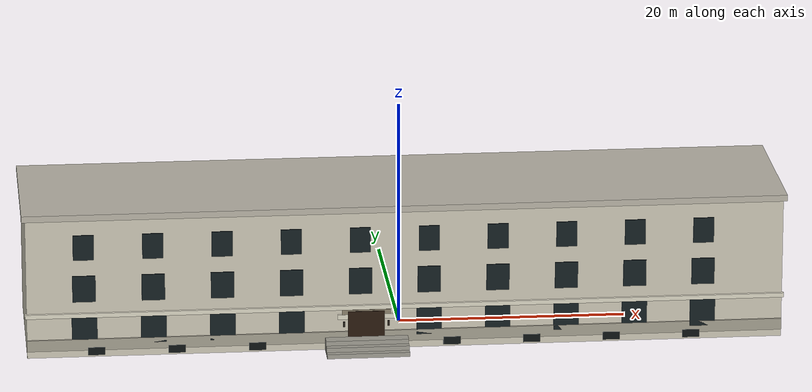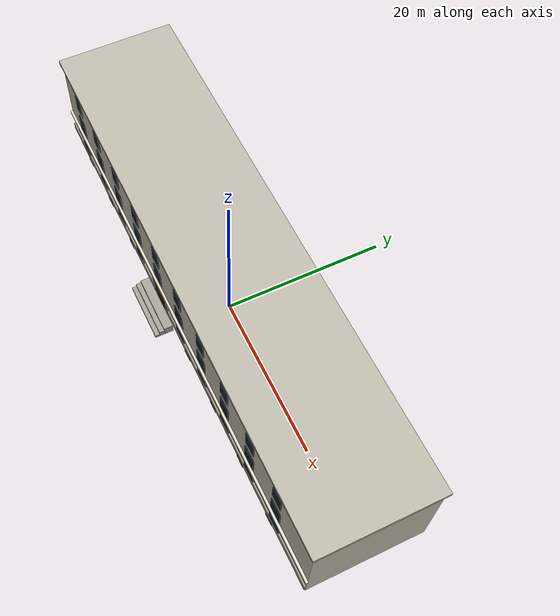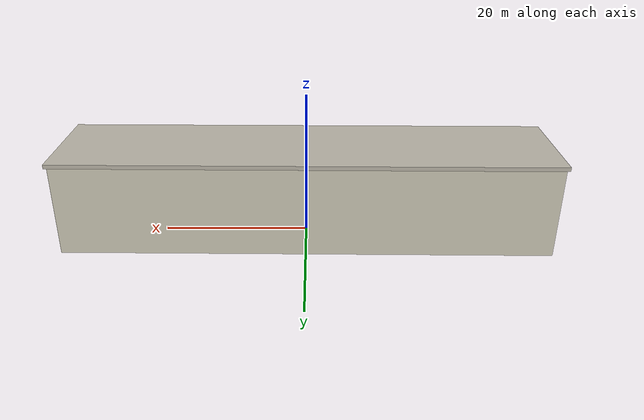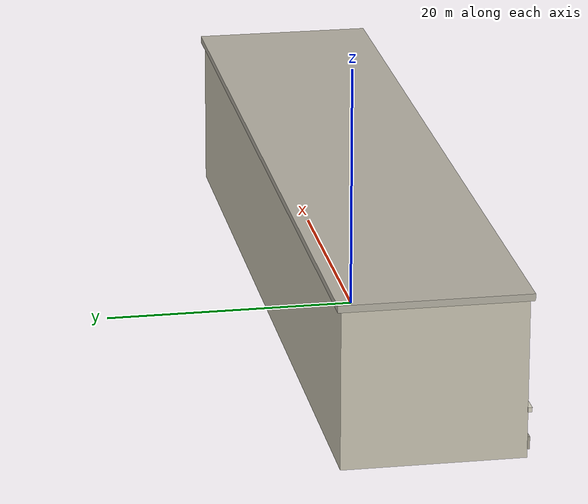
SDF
<?xml version="1.0"?>
<sdf version="1.9">
  <!-- Local garden-facing facade is the -Y side. -->
  <model name="surf_historic_laboratory">
    <static>true</static>
    <link name="building">
      <collision name="main_collision">
        <pose>0 0 6.25 0 0 0</pose>
        <geometry><box><size>66 14 12.5</size></box></geometry>
      </collision>
      <visual name="main_walls">
        <pose>0 0 6.25 0 0 0</pose>
        <geometry><box><size>66 14 12.5</size></box></geometry>
        <material><ambient>0.70 0.68 0.62 1</ambient><diffuse>0.80 0.78 0.71 1</diffuse></material>
      </visual>
      <visual name="foundation_band">
        <pose>0 -7.08 1.15 0 0 0</pose>
        <geometry><box><size>66 0.22 1.0</size></box></geometry>
        <material><ambient>0.55 0.53 0.48 1</ambient><diffuse>0.64 0.62 0.56 1</diffuse></material>
      </visual>
      <visual name="belt_course">
        <pose>0 -7.12 3.85 0 0 0</pose>
        <geometry><box><size>66.3 0.32 0.38</size></box></geometry>
        <material><ambient>0.77 0.75 0.69 1</ambient><diffuse>0.86 0.84 0.77 1</diffuse></material>
      </visual>
      <visual name="roof_parapet">
        <pose>0 0 12.75 0 0 0</pose>
        <geometry><box><size>66.6 14.6 0.55</size></box></geometry>
        <material><ambient>0.64 0.62 0.58 1</ambient><diffuse>0.72 0.70 0.65 1</diffuse></material>
      </visual>

      <!-- Dark recessed windows, arranged in the three rows seen in the photos. -->
      <visual name="window_g_01"><pose>-28 -7.13 2.45 0 0 0</pose><geometry><box><size>2.2 0.12 2.45</size></box></geometry><material><ambient>0.035 0.055 0.060 1</ambient><diffuse>0.08 0.12 0.13 1</diffuse><specular>0.20 0.24 0.24 1</specular></material></visual>
      <visual name="window_g_02"><pose>-22 -7.13 2.45 0 0 0</pose><geometry><box><size>2.2 0.12 2.45</size></box></geometry><material><ambient>0.035 0.055 0.060 1</ambient><diffuse>0.08 0.12 0.13 1</diffuse><specular>0.20 0.24 0.24 1</specular></material></visual>
      <visual name="window_g_03"><pose>-16 -7.13 2.45 0 0 0</pose><geometry><box><size>2.2 0.12 2.45</size></box></geometry><material><ambient>0.035 0.055 0.060 1</ambient><diffuse>0.08 0.12 0.13 1</diffuse><specular>0.20 0.24 0.24 1</specular></material></visual>
      <visual name="window_g_04"><pose>-10 -7.13 2.45 0 0 0</pose><geometry><box><size>2.2 0.12 2.45</size></box></geometry><material><ambient>0.035 0.055 0.060 1</ambient><diffuse>0.08 0.12 0.13 1</diffuse><specular>0.20 0.24 0.24 1</specular></material></visual>
      <visual name="window_g_05"><pose>20 -7.13 2.45 0 0 0</pose><geometry><box><size>2.2 0.12 2.45</size></box></geometry><material><ambient>0.035 0.055 0.060 1</ambient><diffuse>0.08 0.12 0.13 1</diffuse><specular>0.20 0.24 0.24 1</specular></material></visual>
      <visual name="window_g_06"><pose>2 -7.13 2.45 0 0 0</pose><geometry><box><size>2.2 0.12 2.45</size></box></geometry><material><ambient>0.035 0.055 0.060 1</ambient><diffuse>0.08 0.12 0.13 1</diffuse><specular>0.20 0.24 0.24 1</specular></material></visual>
      <visual name="window_g_07"><pose>8 -7.13 2.45 0 0 0</pose><geometry><box><size>2.2 0.12 2.45</size></box></geometry><material><ambient>0.035 0.055 0.060 1</ambient><diffuse>0.08 0.12 0.13 1</diffuse><specular>0.20 0.24 0.24 1</specular></material></visual>
      <visual name="window_g_08"><pose>14 -7.13 2.45 0 0 0</pose><geometry><box><size>2.2 0.12 2.45</size></box></geometry><material><ambient>0.035 0.055 0.060 1</ambient><diffuse>0.08 0.12 0.13 1</diffuse><specular>0.20 0.24 0.24 1</specular></material></visual>
      <visual name="window_g_09"><pose>26 -7.13 2.45 0 0 0</pose><geometry><box><size>2.2 0.12 2.45</size></box></geometry><material><ambient>0.035 0.055 0.060 1</ambient><diffuse>0.08 0.12 0.13 1</diffuse><specular>0.20 0.24 0.24 1</specular></material></visual>

      <visual name="window_2_01"><pose>-28 -7.13 6.25 0 0 0</pose><geometry><box><size>2.0 0.12 2.35</size></box></geometry><material><ambient>0.035 0.055 0.060 1</ambient><diffuse>0.08 0.12 0.13 1</diffuse><specular>0.20 0.24 0.24 1</specular></material></visual>
      <visual name="window_2_02"><pose>-22 -7.13 6.25 0 0 0</pose><geometry><box><size>2.0 0.12 2.35</size></box></geometry><material><ambient>0.035 0.055 0.060 1</ambient><diffuse>0.08 0.12 0.13 1</diffuse><specular>0.20 0.24 0.24 1</specular></material></visual>
      <visual name="window_2_03"><pose>-16 -7.13 6.25 0 0 0</pose><geometry><box><size>2.0 0.12 2.35</size></box></geometry><material><ambient>0.035 0.055 0.060 1</ambient><diffuse>0.08 0.12 0.13 1</diffuse><specular>0.20 0.24 0.24 1</specular></material></visual>
      <visual name="window_2_04"><pose>-10 -7.13 6.25 0 0 0</pose><geometry><box><size>2.0 0.12 2.35</size></box></geometry><material><ambient>0.035 0.055 0.060 1</ambient><diffuse>0.08 0.12 0.13 1</diffuse><specular>0.20 0.24 0.24 1</specular></material></visual>
      <visual name="window_2_05"><pose>-4 -7.13 6.25 0 0 0</pose><geometry><box><size>2.0 0.12 2.35</size></box></geometry><material><ambient>0.035 0.055 0.060 1</ambient><diffuse>0.08 0.12 0.13 1</diffuse><specular>0.20 0.24 0.24 1</specular></material></visual>
      <visual name="window_2_06"><pose>2 -7.13 6.25 0 0 0</pose><geometry><box><size>2.0 0.12 2.35</size></box></geometry><material><ambient>0.035 0.055 0.060 1</ambient><diffuse>0.08 0.12 0.13 1</diffuse><specular>0.20 0.24 0.24 1</specular></material></visual>
      <visual name="window_2_07"><pose>8 -7.13 6.25 0 0 0</pose><geometry><box><size>2.0 0.12 2.35</size></box></geometry><material><ambient>0.035 0.055 0.060 1</ambient><diffuse>0.08 0.12 0.13 1</diffuse><specular>0.20 0.24 0.24 1</specular></material></visual>
      <visual name="window_2_08"><pose>14 -7.13 6.25 0 0 0</pose><geometry><box><size>2.0 0.12 2.35</size></box></geometry><material><ambient>0.035 0.055 0.060 1</ambient><diffuse>0.08 0.12 0.13 1</diffuse><specular>0.20 0.24 0.24 1</specular></material></visual>
      <visual name="window_2_09"><pose>20 -7.13 6.25 0 0 0</pose><geometry><box><size>2.0 0.12 2.35</size></box></geometry><material><ambient>0.035 0.055 0.060 1</ambient><diffuse>0.08 0.12 0.13 1</diffuse><specular>0.20 0.24 0.24 1</specular></material></visual>
      <visual name="window_2_10"><pose>26 -7.13 6.25 0 0 0</pose><geometry><box><size>2.0 0.12 2.35</size></box></geometry><material><ambient>0.035 0.055 0.060 1</ambient><diffuse>0.08 0.12 0.13 1</diffuse><specular>0.20 0.24 0.24 1</specular></material></visual>

      <visual name="window_3_01"><pose>-28 -7.13 10.0 0 0 0</pose><geometry><box><size>1.8 0.12 2.25</size></box></geometry><material><ambient>0.035 0.055 0.060 1</ambient><diffuse>0.08 0.12 0.13 1</diffuse><specular>0.20 0.24 0.24 1</specular></material></visual>
      <visual name="window_3_02"><pose>-22 -7.13 10.0 0 0 0</pose><geometry><box><size>1.8 0.12 2.25</size></box></geometry><material><ambient>0.035 0.055 0.060 1</ambient><diffuse>0.08 0.12 0.13 1</diffuse><specular>0.20 0.24 0.24 1</specular></material></visual>
      <visual name="window_3_03"><pose>-16 -7.13 10.0 0 0 0</pose><geometry><box><size>1.8 0.12 2.25</size></box></geometry><material><ambient>0.035 0.055 0.060 1</ambient><diffuse>0.08 0.12 0.13 1</diffuse><specular>0.20 0.24 0.24 1</specular></material></visual>
      <visual name="window_3_04"><pose>-10 -7.13 10.0 0 0 0</pose><geometry><box><size>1.8 0.12 2.25</size></box></geometry><material><ambient>0.035 0.055 0.060 1</ambient><diffuse>0.08 0.12 0.13 1</diffuse><specular>0.20 0.24 0.24 1</specular></material></visual>
      <visual name="window_3_05"><pose>-4 -7.13 10.0 0 0 0</pose><geometry><box><size>1.8 0.12 2.25</size></box></geometry><material><ambient>0.035 0.055 0.060 1</ambient><diffuse>0.08 0.12 0.13 1</diffuse><specular>0.20 0.24 0.24 1</specular></material></visual>
      <visual name="window_3_06"><pose>2 -7.13 10.0 0 0 0</pose><geometry><box><size>1.8 0.12 2.25</size></box></geometry><material><ambient>0.035 0.055 0.060 1</ambient><diffuse>0.08 0.12 0.13 1</diffuse><specular>0.20 0.24 0.24 1</specular></material></visual>
      <visual name="window_3_07"><pose>8 -7.13 10.0 0 0 0</pose><geometry><box><size>1.8 0.12 2.25</size></box></geometry><material><ambient>0.035 0.055 0.060 1</ambient><diffuse>0.08 0.12 0.13 1</diffuse><specular>0.20 0.24 0.24 1</specular></material></visual>
      <visual name="window_3_08"><pose>14 -7.13 10.0 0 0 0</pose><geometry><box><size>1.8 0.12 2.25</size></box></geometry><material><ambient>0.035 0.055 0.060 1</ambient><diffuse>0.08 0.12 0.13 1</diffuse><specular>0.20 0.24 0.24 1</specular></material></visual>
      <visual name="window_3_09"><pose>20 -7.13 10.0 0 0 0</pose><geometry><box><size>1.8 0.12 2.25</size></box></geometry><material><ambient>0.035 0.055 0.060 1</ambient><diffuse>0.08 0.12 0.13 1</diffuse><specular>0.20 0.24 0.24 1</specular></material></visual>
      <visual name="window_3_10"><pose>26 -7.13 10.0 0 0 0</pose><geometry><box><size>1.8 0.12 2.25</size></box></geometry><material><ambient>0.035 0.055 0.060 1</ambient><diffuse>0.08 0.12 0.13 1</diffuse><specular>0.20 0.24 0.24 1</specular></material></visual>

      <visual name="main_door">
        <pose>-3.5 -7.18 1.75 0 0 0</pose>
        <geometry><box><size>3.2 0.22 3.5</size></box></geometry>
        <material><ambient>0.08 0.055 0.035 1</ambient><diffuse>0.16 0.10 0.055 1</diffuse></material>
      </visual>
      <visual name="door_surround">
        <pose>-3.5 -7.11 3.0 0 0 0</pose>
        <geometry><box><size>5.0 0.28 0.42</size></box></geometry>
        <material><ambient>0.77 0.75 0.69 1</ambient><diffuse>0.86 0.84 0.77 1</diffuse></material>
      </visual>
      <visual name="entrance_name_panel">
        <pose>-3.5 -7.19 3.42 0 0 0</pose>
        <geometry><box><size>4.2 0.10 0.42</size></box></geometry>
        <material><ambient>0.42 0.39 0.33 1</ambient><diffuse>0.54 0.50 0.42 1</diffuse></material>
      </visual>
      <visual name="left_door_sconce">
        <pose>-5.45 -7.24 2.35 0 0 0</pose>
        <geometry><box><size>0.18 0.15 0.45</size></box></geometry>
        <material><ambient>0.07 0.06 0.045 1</ambient><diffuse>0.13 0.11 0.08 1</diffuse><emissive>0.22 0.17 0.08 1</emissive></material>
      </visual>
      <visual name="right_door_sconce">
        <pose>-1.55 -7.24 2.35 0 0 0</pose>
        <geometry><box><size>0.18 0.15 0.45</size></box></geometry>
        <material><ambient>0.07 0.06 0.045 1</ambient><diffuse>0.13 0.11 0.08 1</diffuse><emissive>0.22 0.17 0.08 1</emissive></material>
      </visual>

      <!-- Small barred basement windows beneath the projecting foundation band. -->
      <visual name="basement_01"><pose>-27 -7.14 0.55 0 0 0</pose><geometry><box><size>1.5 0.12 0.70</size></box></geometry><material><ambient>0.025 0.035 0.035 1</ambient><diffuse>0.055 0.075 0.075 1</diffuse></material></visual>
      <visual name="basement_02"><pose>-20 -7.14 0.55 0 0 0</pose><geometry><box><size>1.5 0.12 0.70</size></box></geometry><material><ambient>0.025 0.035 0.035 1</ambient><diffuse>0.055 0.075 0.075 1</diffuse></material></visual>
      <visual name="basement_03"><pose>-13 -7.14 0.55 0 0 0</pose><geometry><box><size>1.5 0.12 0.70</size></box></geometry><material><ambient>0.025 0.035 0.035 1</ambient><diffuse>0.055 0.075 0.075 1</diffuse></material></visual>
      <visual name="basement_04"><pose>4 -7.14 0.55 0 0 0</pose><geometry><box><size>1.5 0.12 0.70</size></box></geometry><material><ambient>0.025 0.035 0.035 1</ambient><diffuse>0.055 0.075 0.075 1</diffuse></material></visual>
      <visual name="basement_05"><pose>11 -7.14 0.55 0 0 0</pose><geometry><box><size>1.5 0.12 0.70</size></box></geometry><material><ambient>0.025 0.035 0.035 1</ambient><diffuse>0.055 0.075 0.075 1</diffuse></material></visual>
      <visual name="basement_06"><pose>18 -7.14 0.55 0 0 0</pose><geometry><box><size>1.5 0.12 0.70</size></box></geometry><material><ambient>0.025 0.035 0.035 1</ambient><diffuse>0.055 0.075 0.075 1</diffuse></material></visual>
      <visual name="basement_07"><pose>25 -7.14 0.55 0 0 0</pose><geometry><box><size>1.5 0.12 0.70</size></box></geometry><material><ambient>0.025 0.035 0.035 1</ambient><diffuse>0.055 0.075 0.075 1</diffuse></material></visual>

      <collision name="top_step_collision"><pose>-3.5 -7.85 0.60 0 0 0</pose><geometry><box><size>7.2 1.1 1.2</size></box></geometry></collision>
      <visual name="top_step_visual"><pose>-3.5 -7.85 0.60 0 0 0</pose><geometry><box><size>7.2 1.1 1.2</size></box></geometry><material><ambient>0.53 0.52 0.49 1</ambient><diffuse>0.62 0.61 0.57 1</diffuse></material></visual>
      <collision name="middle_step_collision"><pose>-3.5 -8.65 0.40 0 0 0</pose><geometry><box><size>7.2 0.7 0.8</size></box></geometry></collision>
      <visual name="middle_step_visual"><pose>-3.5 -8.65 0.40 0 0 0</pose><geometry><box><size>7.2 0.7 0.8</size></box></geometry><material><ambient>0.53 0.52 0.49 1</ambient><diffuse>0.62 0.61 0.57 1</diffuse></material></visual>
      <collision name="bottom_step_collision"><pose>-3.5 -9.25 0.20 0 0 0</pose><geometry><box><size>7.2 0.6 0.4</size></box></geometry></collision>
      <visual name="bottom_step_visual"><pose>-3.5 -9.25 0.20 0 0 0</pose><geometry><box><size>7.2 0.6 0.4</size></box></geometry><material><ambient>0.53 0.52 0.49 1</ambient><diffuse>0.62 0.61 0.57 1</diffuse></material></visual>
    </link>
  </model>
</sdf>
